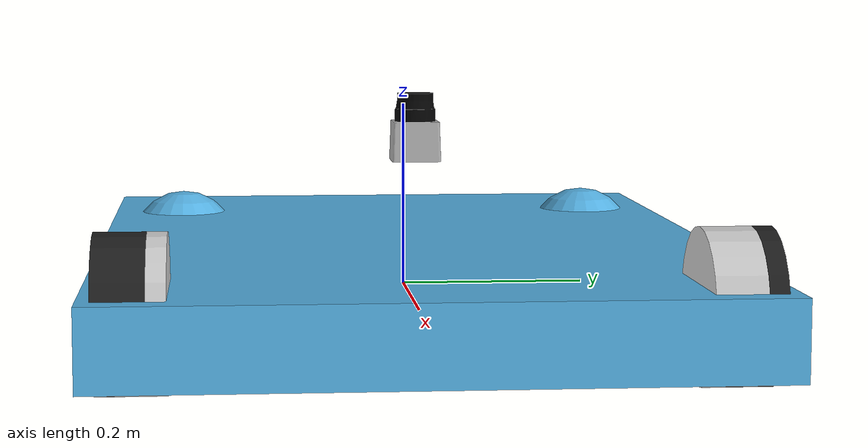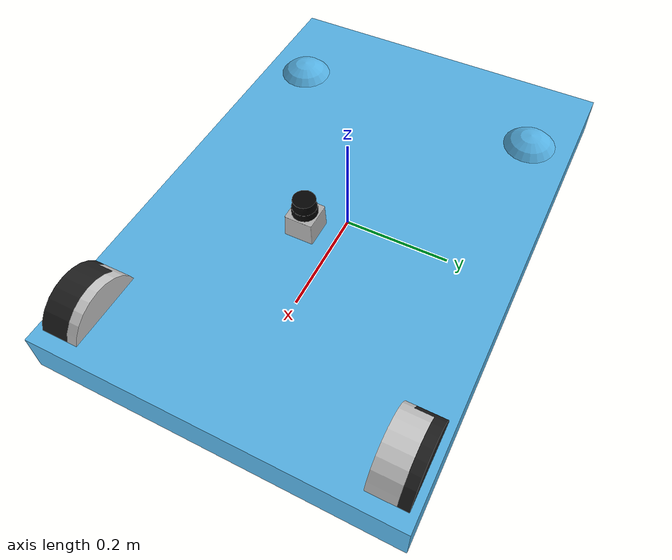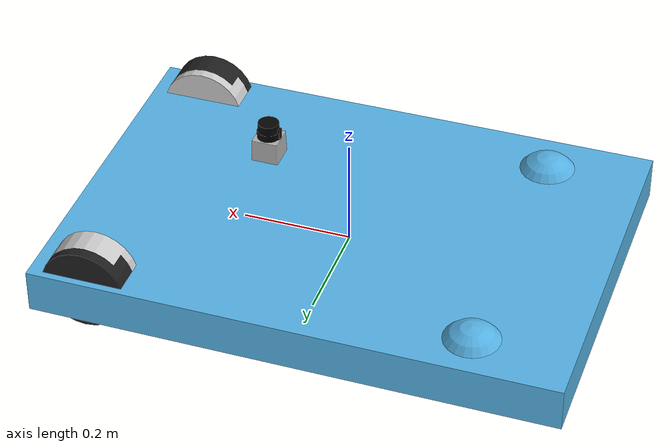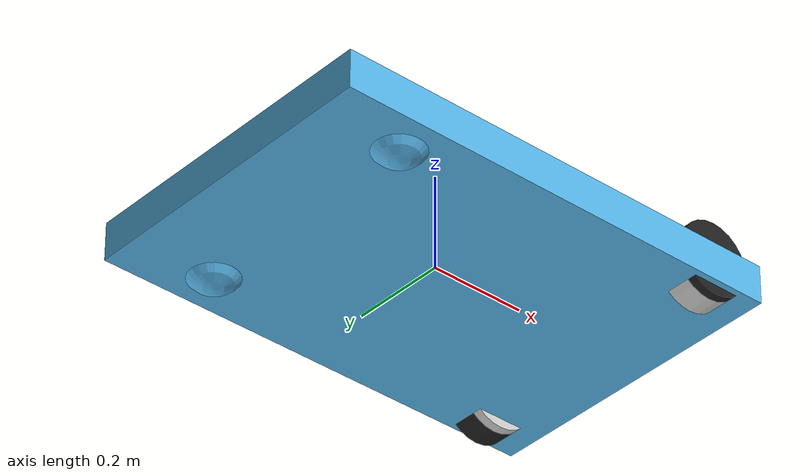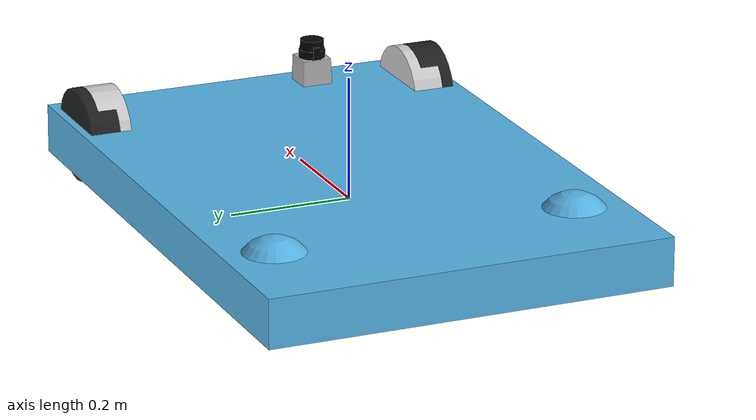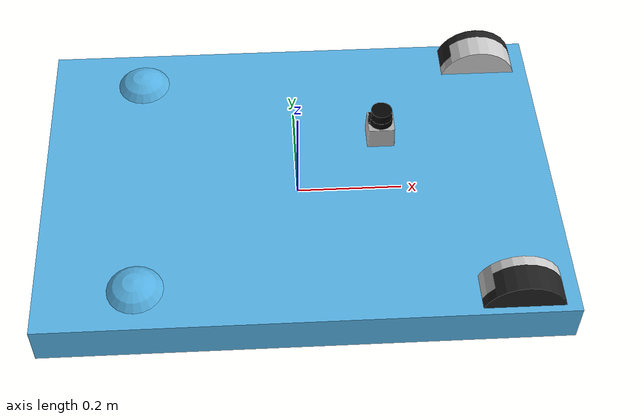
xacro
<?xml version="1.0"?>
<!--
    - Base      : kobuki
    - Stacks    : hexagons
    - 3d Sensor : kinect
-->
<robot name="turtlebot" xmlns:xacro="http://ros.org/wiki/xacro">

  <xacro:include filename="$(find chefbot_description)/urdf/chefbot_rviz_library.urdf.xacro" />

</robot>

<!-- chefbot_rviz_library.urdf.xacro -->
<robot name="chefbot" xmlns:xacro="http://ros.org/wiki/xacro">

<!--
  The complete turtlebot library of xacros for easy reference
 -->
  <!-- General -->
  <xacro:include filename="$(find chefbot_description)/urdf/common_properties.urdf.xacro"/>
  <!--xacro:include filename="$(find chefbot_description)/urdf/chefbot_properties.urdf.xacro"/-->

  <!-- Bases -->
  <xacro:include filename="$(find chefbot_description)/urdf/chefbot_rviz_base.urdf.xacro"/>

</robot>

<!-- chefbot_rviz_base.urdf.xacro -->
<robot name="chefbot" xmlns:xacro="http://www.ros.org/wiki/xacro">

  <xacro:include filename="$(find chefbot_description)/urdf/common_properties.urdf.xacro" />

	<!-- Robot's part -->

			<!-- Joint's -->

	  		<!-- Base footprint -->
	<joint name="base_joint" type="fixed">
		<origin xyz="0 0 0.0102" rpy="0 0 0" />
		<parent link="base_footprint"/>
		<child link="base_link" />
	</joint>

		  	<!-- Caster wheels -->

		  	<!-- Left wheels -->
	<joint name="left_axle_joint" type="fixed">
		<origin xyz="0 0.171475 0.0178" rpy="0 0 0"/>
		<parent link="base_link"/>
		<child link="left_axle_link"/>
		<axis xyz="0 1 0"/>
	</joint>

	<joint name="left_wheel_joint" type="fixed">
		<origin xyz="0 0.01905 0" rpy="0 0 0"/>
		<parent link="left_axle_link"/>
		<child link="left_wheel_link"/>
		<axis xyz="0 1 0"/>
	</joint>

		  	<!-- Right wheels -->

	<joint name="right_axle_joint" type="fixed">
		<origin xyz="0 -0.171475 0.0178" rpy="0 0 0"/>
		<parent link="base_link"/>
		<child link="right_axle_link"/>
		<axis xyz="0 1 0"/>
	</joint>

	<joint name="right_wheel_joint" type="fixed">
		<origin xyz="0 -0.01905 0" rpy="0 0 0"/>
		<parent link="right_axle_link"/>
		<child link="right_wheel_link"/>
		<axis xyz="0 1 0"/>
	</joint>

		<!--Sensors -->

	<joint name="laser_joint" type="fixed">
		<axis xyz="0 1 0" />
		<origin xyz=".15 0 .1" rpy="0 0 0"/>
		<parent link="base_link"/>
		<child link="laser_link"/>
	</joint>

		<!-- Link's -->

  		<!-- Base footprint -->
	<link name="base_footprint"/>

     		<!-- Chassis -->
	<link name='base_link'>

		<pose>0 0 0.1 0 0 0</pose>

		<inertial>
		<mass value="15.0"/>
		<origin xyz="0.0 0 0.1" rpy=" 0 0 0"/>
		<inertia
		  ixx="0.1" ixy="0" ixz="0"
		  iyy="0.1" iyz="0"
		  izz="0.1"
		/>
		</inertial>

		<collision>
		<geometry>
		<box size=".96 .665 .08"/>
		</geometry>
		</collision>

		<visual>
		<origin xyz="0 0 0" rpy=" 0 0 0"/>
		<geometry>
		<box size=".96 .665 .08"/>
		</geometry>
		</visual>

		  	<!-- Caster wheels -->
		<collision name='caster_collision'>
		<origin xyz="-0.3 -0.25 0" rpy=" 0 0 0"/>
			<geometry>
				<sphere radius="0.065"/>
			</geometry>
			<surface>
			<friction>
				<ode>
					<mu>0</mu>
					<mu2>0</mu2>
					<slip1>1.0</slip1>
					<slip2>1.0</slip2>
				</ode>
			</friction>
			</surface>
		</collision>

		<visual name='caster_visual'>
		<origin xyz="-0.3 -0.25 0" rpy=" 0 0 0"/>
			<geometry>
				<sphere radius="0.065"/>
			</geometry>
		</visual>

		<collision name='caster_front_collision'>
		<origin xyz="-0.3 0.25 0" rpy=" 0 0 0"/>
			<geometry>
				<sphere radius="0.065"/>
			</geometry>
			<surface>
			<friction>
				<ode>
					<mu>0</mu>
					<mu2>0</mu2>
					<slip1>1.0</slip1>
					<slip2>1.0</slip2>
				</ode>
			</friction>
			</surface>
		</collision>

		<visual name='caster_front_visual'>
		<origin xyz="-0.3 0.25 0" rpy=" 0 0 0"/>
			<geometry>
				<sphere radius="0.065"/>
			</geometry>
		</visual>

	</link>

	  	<!-- Left wheels -->

	<link name="left_axle_link">
		<inertial>
      		<origin xyz="0 0 0" rpy="0 1.5707 1.5707"/>
			<mass value="5" />
			<inertia
				ixx=".1" ixy="0.0" ixz="0.0"
				iyy=".1" iyz="0.0"
				izz=".1"/>
		</inertial>

		<visual>
      		<origin xyz="0.38 0.104 0" rpy="0 1.5707 1.5707"/>
			<geometry>
				<cylinder radius="0.077" length="0.05"/>
			</geometry>
			<material name ="light_grey" />
		</visual>

		<collision>
      		<origin xyz="0.38 0.104 0" rpy="0 1.5707 1.5707"/>
			<geometry>
				<cylinder radius="0.077" length="0.05"/>
			</geometry>
		</collision>
	</link>

	<link name="left_wheel_link">

		<inertial>
		<origin xyz="0 0 0" rpy="0 1.5707 1.5707"/>
			<mass value="5" />
			<inertia
			ixx=".1" ixy="0.0" ixz="0.0"
			iyy=".1" iyz="0.0"
			izz=".1"/>
		</inertial>

		<visual>
		<origin xyz="0.38 0.104 0" rpy="0 1.5707 1.5707"/>
			<geometry>
				<cylinder radius="0.077" length="0.05"/>
			</geometry>
			<material name ="black" />
		</visual>

		<collision>
		<origin xyz="0.38 0.104 0" rpy="0 1.5707 1.5707"/>
			<geometry>
				<cylinder radius="0.077" length="0.05"/>
			</geometry>
		</collision>

	</link>

	  	<!-- Right wheels -->

	<link name="right_axle_link">
		<inertial>
      		<origin xyz="0 0 0" rpy="0 1.5707 1.5707"/>
			<mass value="5" />
			<inertia
				ixx=".1" ixy="0.0" ixz="0.0"
				iyy=".1" iyz="0.0"
				izz=".1"/>
		</inertial>

		<visual>
      		<origin xyz="0.38 -0.104 0" rpy="0 1.5707 1.5707"/>
			<geometry>
				<cylinder radius="0.077" length="0.05"/>
			</geometry>
			<material name ="light_grey" />
		</visual>

		<collision>
      		<origin xyz="0.38 -0.104 0" rpy="0 1.5707 1.5707"/>
			<geometry>
				<cylinder radius="0.077" length="0.05"/>
			</geometry>
		</collision>
	</link>

	<link name="right_wheel_link">
		<inertial>
      		<origin xyz="0 0 0" rpy="0 1.5707 1.5707"/>
			<mass value="5" />
			<inertia
				ixx=".1" ixy="0.0" ixz="0.0"
				iyy=".1" iyz="0.0"
				izz=".1"/>
		</inertial>

		<visual>
      		<origin xyz="0.38 -0.104 0" rpy="0 1.5707 1.5707"/>
			<geometry>
				<cylinder radius="0.077" length="0.05"/>
			</geometry>
			<material name ="black" />
		</visual>

		<collision>
      		<origin xyz="0.38 -0.104 0" rpy="0 1.5707 1.5707"/>
			<geometry>
				<cylinder radius="0.077" length="0.05"/>
			</geometry>
		</collision>
	</link>

		<!-- Hokuyo Laser -->
	<link name="laser_link">
		<collision>
			<origin xyz="0 0 0" rpy="0 0 0"/>
			<geometry>
				<box size="0.1 0.1 0.1"/>
			</geometry>
		</collision>

		<visual>
		<origin xyz="0 0 0.075" rpy="0 0 0"/>
			<geometry>
				<mesh filename="package://chefbot_description/meshes/hokuyo.dae"/>
			</geometry>
		</visual>

	<inertial>
	<mass value="1e-5" />
	<origin xyz="0 0 0" rpy="0 0 0"/>
	<inertia ixx="1e-6" ixy="0" ixz="0" iyy="1e-6" iyz="0" izz="1e-6" />
	</inertial>
	</link>

</robot>
